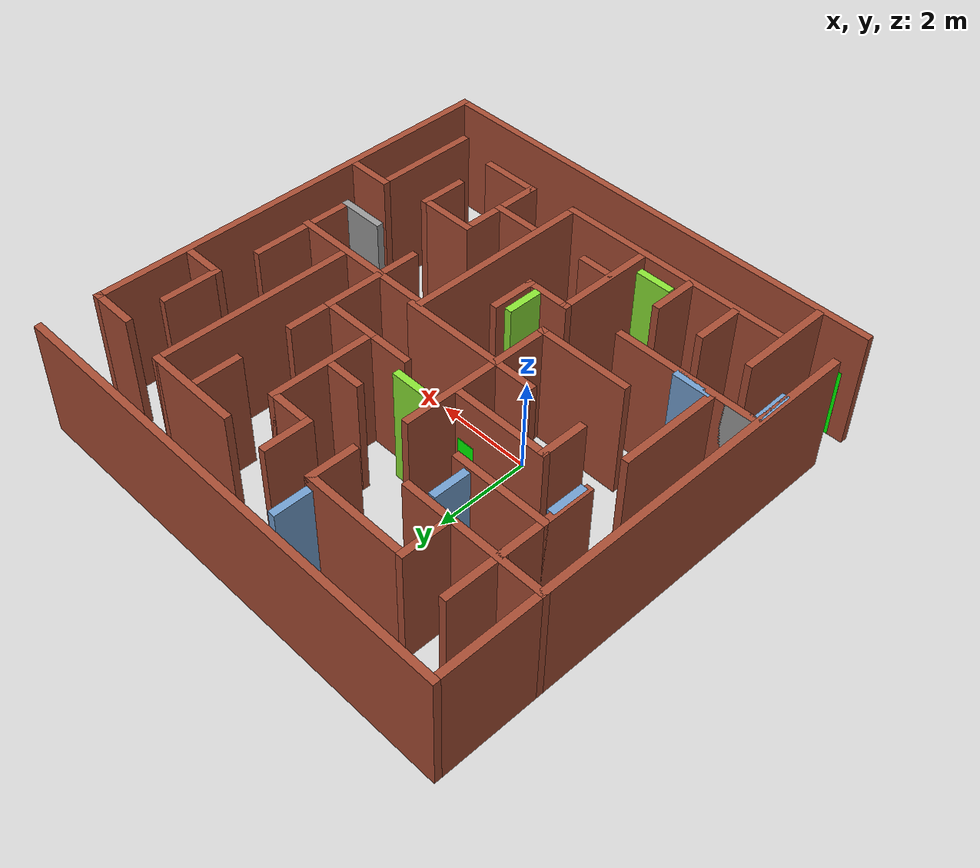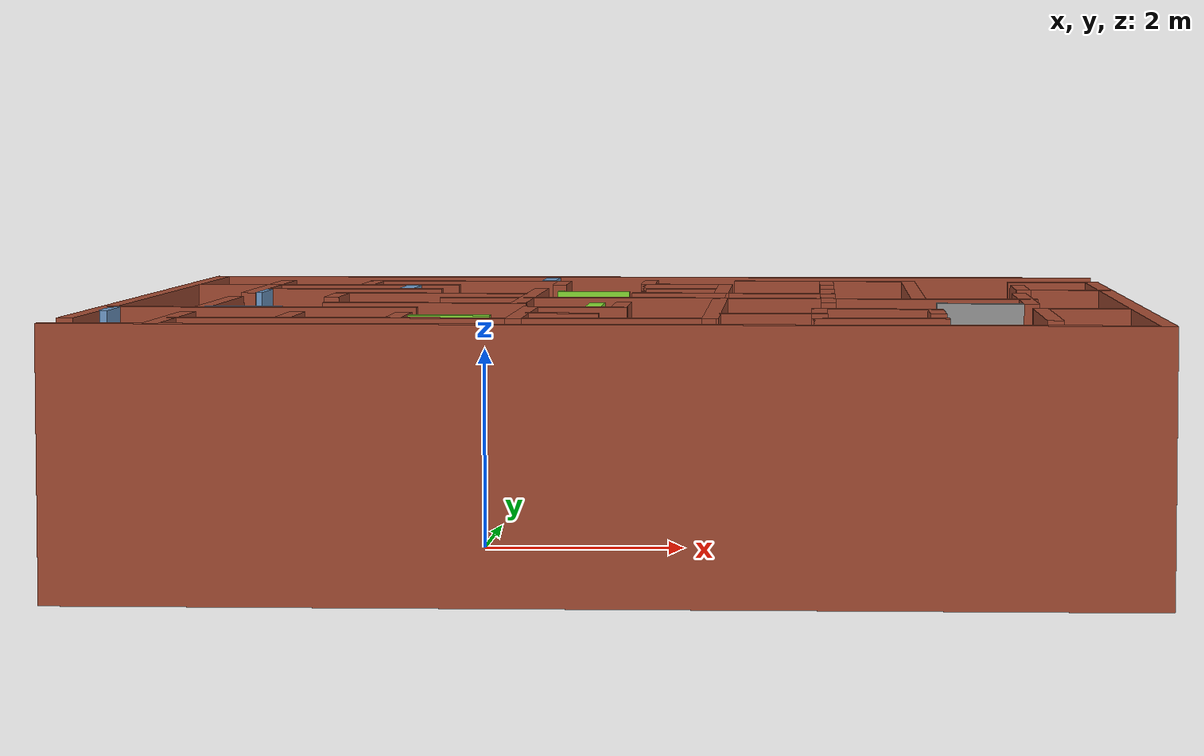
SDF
<?xml version='1.0'?>
<sdf version='1.7'>
  <model name='labyrinth2'>
    <model name='blue'>
      <pose>0.431003 -0.639272 0 0 0 -1.5735</pose>
      <link name='Wall_7'>
        <collision name='Wall_7_Collision'>
          <geometry>
            <box>
              <size>0.75 0.15 2.5</size>
            </box>
          </geometry>
          <pose>0 0 1.25 0 -0 0</pose>
        </collision>
        <visual name='Wall_7_Visual'>
          <pose>0 0 1.25 0 -0 0</pose>
          <geometry>
            <box>
              <size>0.75 0.15 2.5</size>
            </box>
          </geometry>
          <material>
            <script>
              <uri>file://media/materials/scripts/gazebo.material</uri>
              <name>Gazebo/Grey</name>
            </script>
            <ambient>0.447059 0.623529 0.811765 1</ambient>
          </material>
          <meta>
            <layer>0</layer>
          </meta>
        </visual>
        <pose>-5.41026 -0.105215 0 0 -0 0</pose>
      </link>
      <static>1</static>
    </model>
    <model name='blue_0'>
      <pose>3.22005 -1.51487 0 0 -0 0</pose>
      <link name='Wall_7'>
        <collision name='Wall_7_Collision'>
          <geometry>
            <box>
              <size>0.75 0.15 2.5</size>
            </box>
          </geometry>
          <pose>0 0 1.25 0 -0 0</pose>
        </collision>
        <visual name='Wall_7_Visual'>
          <pose>0 0 1.25 0 -0 0</pose>
          <geometry>
            <box>
              <size>0.75 0.15 2.5</size>
            </box>
          </geometry>
          <material>
            <script>
              <uri>file://media/materials/scripts/gazebo.material</uri>
              <name>Gazebo/Grey</name>
            </script>
            <ambient>0.447059 0.623529 0.811765 1</ambient>
          </material>
          <meta>
            <layer>0</layer>
          </meta>
        </visual>
        <pose>-5.41026 -0.105215 0 0 -0 0</pose>
      </link>
      <static>1</static>
    </model>
    <model name='blue_1'>
      <pose>-3.59976 3.27564 0 0 -0 1.58436</pose>
      <link name='Wall_7'>
        <collision name='Wall_7_Collision'>
          <geometry>
            <box>
              <size>0.75 0.15 2.5</size>
            </box>
          </geometry>
          <pose>0 0 1.25 0 -0 0</pose>
        </collision>
        <visual name='Wall_7_Visual'>
          <pose>0 0 1.25 0 -0 0</pose>
          <geometry>
            <box>
              <size>0.75 0.15 2.5</size>
            </box>
          </geometry>
          <material>
            <script>
              <uri>file://media/materials/scripts/gazebo.material</uri>
              <name>Gazebo/Grey</name>
            </script>
            <ambient>0.447059 0.623529 0.811765 1</ambient>
          </material>
          <meta>
            <layer>0</layer>
          </meta>
        </visual>
        <pose>-5.41026 -0.105215 0 0 -0 0</pose>
      </link>
      <static>1</static>
    </model>
    <model name='blue_clone'>
      <pose>-2.42346 -3.70694 0 0 0 -1.5735</pose>
      <link name='Wall_7'>
        <collision name='Wall_7_Collision'>
          <geometry>
            <box>
              <size>0.75 0.15 2.5</size>
            </box>
          </geometry>
          <pose>0 0 1.25 0 -0 0</pose>
        </collision>
        <visual name='Wall_7_Visual'>
          <pose>0 0 1.25 0 -0 0</pose>
          <geometry>
            <box>
              <size>0.75 0.15 2.5</size>
            </box>
          </geometry>
          <material>
            <script>
              <uri>file://media/materials/scripts/gazebo.material</uri>
              <name>Gazebo/Grey</name>
            </script>
            <ambient>0.447059 0.623529 0.811765 1</ambient>
          </material>
          <meta>
            <layer>0</layer>
          </meta>
        </visual>
        <pose>-5.41026 -0.105215 0 0 -0 0</pose>
      </link>
      <static>1</static>
    </model>
    <model name='blue_clone_0'>
      <pose>-0.950572 -2.63679 0 0 0 -1.5735</pose>
      <link name='Wall_7'>
        <collision name='Wall_7_Collision'>
          <geometry>
            <box>
              <size>0.75 0.15 2.5</size>
            </box>
          </geometry>
          <pose>0 0 1.25 0 -0 0</pose>
        </collision>
        <visual name='Wall_7_Visual'>
          <pose>0 0 1.25 0 -0 0</pose>
          <geometry>
            <box>
              <size>0.75 0.15 2.5</size>
            </box>
          </geometry>
          <material>
            <script>
              <uri>file://media/materials/scripts/gazebo.material</uri>
              <name>Gazebo/Grey</name>
            </script>
            <ambient>0.447059 0.623529 0.811765 1</ambient>
          </material>
          <meta>
            <layer>0</layer>
          </meta>
        </visual>
        <pose>-5.41026 -0.105215 0 0 -0 0</pose>
      </link>
      <static>1</static>
    </model>
    <model name='green'>
      <pose>-1.04556 2.91246 0 0 -0 0</pose>
      <link name='Wall_9'>
        <collision name='Wall_9_Collision'>
          <geometry>
            <box>
              <size>0.75 0.15 2.5</size>
            </box>
          </geometry>
          <pose>0 0 1.25 0 -0 0</pose>
        </collision>
        <visual name='Wall_9_Visual'>
          <pose>0 0 1.25 0 -0 0</pose>
          <geometry>
            <box>
              <size>0.75 0.15 2.5</size>
            </box>
          </geometry>
          <material>
            <script>
              <uri>file://media/materials/scripts/gazebo.material</uri>
              <name>Gazebo/Grey</name>
            </script>
            <ambient>0.541176 0.886275 0.203922 1</ambient>
          </material>
          <meta>
            <layer>0</layer>
          </meta>
        </visual>
        <pose>2.0395 -1.1985 0 0 -0 0</pose>
      </link>
      <static>1</static>
    </model>
    <model name='green_0'>
      <pose>2.37475 0.953394 0 0 0 -1.57194</pose>
      <link name='Wall_9'>
        <collision name='Wall_9_Collision'>
          <geometry>
            <box>
              <size>0.75 0.15 2.5</size>
            </box>
          </geometry>
          <pose>0 0 1.25 0 -0 0</pose>
        </collision>
        <visual name='Wall_9_Visual'>
          <pose>0 0 1.25 0 -0 0</pose>
          <geometry>
            <box>
              <size>0.75 0.15 2.5</size>
            </box>
          </geometry>
          <material>
            <script>
              <uri>file://media/materials/scripts/gazebo.material</uri>
              <name>Gazebo/Grey</name>
            </script>
            <ambient>0.541176 0.886275 0.203922 1</ambient>
          </material>
          <meta>
            <layer>0</layer>
          </meta>
        </visual>
        <pose>2.0395 -1.1985 0 0 -0 0</pose>
      </link>
      <static>1</static>
    </model>
    <model name='green_1'>
      <pose>-2.08812 -1.96831 0 0 -0 0</pose>
      <link name='Wall_9'>
        <collision name='Wall_9_Collision'>
          <geometry>
            <box>
              <size>0.75 0.15 2.5</size>
            </box>
          </geometry>
          <pose>0 0 1.25 0 -0 0</pose>
        </collision>
        <visual name='Wall_9_Visual'>
          <pose>0 0 1.25 0 -0 0</pose>
          <geometry>
            <box>
              <size>0.75 0.15 2.5</size>
            </box>
          </geometry>
          <material>
            <script>
              <uri>file://media/materials/scripts/gazebo.material</uri>
              <name>Gazebo/Grey</name>
            </script>
            <ambient>0.541176 0.886275 0.203922 1</ambient>
          </material>
          <meta>
            <layer>0</layer>
          </meta>
        </visual>
        <pose>2.0395 -1.1985 0 0 -0 0</pose>
      </link>
      <static>1</static>
    </model>
    <model name='green_thin'>
      <pose>-0.243979 -1.48985 0 0 -0 0</pose>
      <link name='Wall_5'>
        <collision name='Wall_5_Collision'>
          <geometry>
            <box>
              <size>0.36 0.01 1.5</size>
            </box>
          </geometry>
          <pose>0 0 0.75 0 -0 0</pose>
        </collision>
        <visual name='Wall_5_Visual'>
          <pose>0 0 0.75 0 -0 0</pose>
          <geometry>
            <box>
              <size>0.36 0.01 1.5</size>
            </box>
          </geometry>
          <material>
            <script>
              <uri>file://media/materials/scripts/gazebo.material</uri>
              <name>Gazebo/Grey</name>
            </script>
            <ambient>0 1 0 1</ambient>
          </material>
          <meta>
            <layer>0</layer>
          </meta>
        </visual>
        <pose>-2.8125 -3.0925 0 0 -0 0</pose>
      </link>
      <static>1</static>
    </model>
    <model name='green_thin_0'>
      <pose>2.88238 4.45094 0 0 -0 0</pose>
      <link name='Wall_5'>
        <collision name='Wall_5_Collision'>
          <geometry>
            <box>
              <size>0.36 0.01 1.5</size>
            </box>
          </geometry>
          <pose>0 0 0.75 0 -0 0</pose>
        </collision>
        <visual name='Wall_5_Visual'>
          <pose>0 0 0.75 0 -0 0</pose>
          <geometry>
            <box>
              <size>0.36 0.01 1.5</size>
            </box>
          </geometry>
          <material>
            <script>
              <uri>file://media/materials/scripts/gazebo.material</uri>
              <name>Gazebo/Grey</name>
            </script>
            <ambient>0 1 0 1</ambient>
          </material>
          <meta>
            <layer>0</layer>
          </meta>
        </visual>
        <pose>-2.8125 -3.0925 0 0 -0 0</pose>
      </link>
      <static>1</static>
    </model>
    <model name='maikyuu_te'>
      <pose>1.44325 0.363613 0 0 -0 0</pose>
      <link name='Wall_100'>
        <collision name='Wall_100_Collision'>
          <geometry>
            <box>
              <size>1 0.15 2.5</size>
            </box>
          </geometry>
          <pose>0 0 1.25 0 -0 0</pose>
        </collision>
        <visual name='Wall_100_Visual'>
          <pose>0 0 1.25 0 -0 0</pose>
          <geometry>
            <box>
              <size>1 0.15 2.5</size>
            </box>
          </geometry>
          <material>
            <script>
              <uri>file://media/materials/scripts/gazebo.material</uri>
              <name>Gazebo/Bricks</name>
            </script>
            <ambient>1 1 1 1</ambient>
          </material>
          <meta>
            <layer>0</layer>
          </meta>
        </visual>
        <pose>-0.442288 -1.88585 0 0 -0 3.14159</pose>
      </link>
      <link name='Wall_101'>
        <collision name='Wall_101_Collision'>
          <geometry>
            <box>
              <size>2.25 0.15 2.5</size>
            </box>
          </geometry>
          <pose>0 0 1.25 0 -0 0</pose>
        </collision>
        <visual name='Wall_101_Visual'>
          <pose>0 0 1.25 0 -0 0</pose>
          <geometry>
            <box>
              <size>2.25 0.15 2.5</size>
            </box>
          </geometry>
          <material>
            <script>
              <uri>file://media/materials/scripts/gazebo.material</uri>
              <name>Gazebo/Bricks</name>
            </script>
            <ambient>1 1 1 1</ambient>
          </material>
          <meta>
            <layer>0</layer>
          </meta>
        </visual>
        <pose>-0.867288 -2.93585 0 0 -0 -1.5708</pose>
      </link>
      <link name='Wall_103'>
        <collision name='Wall_103_Collision'>
          <geometry>
            <box>
              <size>0.75 0.15 2.5</size>
            </box>
          </geometry>
          <pose>0 0 1.25 0 -0 0</pose>
        </collision>
        <visual name='Wall_103_Visual'>
          <pose>0 0 1.25 0 -0 0</pose>
          <geometry>
            <box>
              <size>0.75 0.15 2.5</size>
            </box>
          </geometry>
          <material>
            <script>
              <uri>file://media/materials/scripts/gazebo.material</uri>
              <name>Gazebo/Bricks</name>
            </script>
            <ambient>1 1 1 1</ambient>
          </material>
          <meta>
            <layer>0</layer>
          </meta>
        </visual>
        <pose>-0.521831 -3.06732 0 0 -0 0</pose>
      </link>
      <link name='Wall_105'>
        <collision name='Wall_105_Collision'>
          <geometry>
            <box>
              <size>1 0.15 2.5</size>
            </box>
          </geometry>
          <pose>0 0 1.25 0 -0 0</pose>
        </collision>
        <visual name='Wall_105_Visual'>
          <pose>0 0 1.25 0 -0 0</pose>
          <geometry>
            <box>
              <size>1 0.15 2.5</size>
            </box>
          </geometry>
          <material>
            <script>
              <uri>file://media/materials/scripts/gazebo.material</uri>
              <name>Gazebo/Bricks</name>
            </script>
            <ambient>1 1 1 1</ambient>
          </material>
          <meta>
            <layer>0</layer>
          </meta>
        </visual>
        <pose>1.47373 -3.02709 0 0 -0 0</pose>
      </link>
      <link name='Wall_106'>
        <collision name='Wall_106_Collision'>
          <geometry>
            <box>
              <size>1 0.15 2.5</size>
            </box>
          </geometry>
          <pose>0 0 1.25 0 -0 0</pose>
        </collision>
        <visual name='Wall_106_Visual'>
          <pose>0 0 1.25 0 -0 0</pose>
          <geometry>
            <box>
              <size>1 0.15 2.5</size>
            </box>
          </geometry>
          <material>
            <script>
              <uri>file://media/materials/scripts/gazebo.material</uri>
              <name>Gazebo/Bricks</name>
            </script>
            <ambient>1 1 1 1</ambient>
          </material>
          <meta>
            <layer>0</layer>
          </meta>
        </visual>
        <pose>1.89873 -2.60209 0 0 -0 1.5708</pose>
      </link>
      <link name='Wall_107'>
        <collision name='Wall_107_Collision'>
          <geometry>
            <box>
              <size>1.25 0.15 2.5</size>
            </box>
          </geometry>
          <pose>0 0 1.25 0 -0 0</pose>
        </collision>
        <visual name='Wall_107_Visual'>
          <pose>0 0 1.25 0 -0 0</pose>
          <geometry>
            <box>
              <size>1.25 0.15 2.5</size>
            </box>
          </geometry>
          <material>
            <script>
              <uri>file://media/materials/scripts/gazebo.material</uri>
              <name>Gazebo/Bricks</name>
            </script>
            <ambient>1 1 1 1</ambient>
          </material>
          <meta>
            <layer>0</layer>
          </meta>
        </visual>
        <pose>2.44873 -2.17709 0 0 -0 0</pose>
      </link>
      <link name='Wall_108'>
        <collision name='Wall_108_Collision'>
          <geometry>
            <box>
              <size>1 0.15 2.5</size>
            </box>
          </geometry>
          <pose>0 0 1.25 0 -0 0</pose>
        </collision>
        <visual name='Wall_108_Visual'>
          <pose>0 0 1.25 0 -0 0</pose>
          <geometry>
            <box>
              <size>1 0.15 2.5</size>
            </box>
          </geometry>
          <material>
            <script>
              <uri>file://media/materials/scripts/gazebo.material</uri>
              <name>Gazebo/Bricks</name>
            </script>
            <ambient>1 1 1 1</ambient>
          </material>
          <meta>
            <layer>0</layer>
          </meta>
        </visual>
        <pose>2.99873 -2.60209 0 0 -0 -1.5708</pose>
      </link>
      <link name='Wall_110'>
        <collision name='Wall_110_Collision'>
          <geometry>
            <box>
              <size>2.25 0.15 2.5</size>
            </box>
          </geometry>
          <pose>0 0 1.25 0 -0 0</pose>
        </collision>
        <visual name='Wall_110_Visual'>
          <pose>0 0 1.25 0 -0 0</pose>
          <geometry>
            <box>
              <size>2.25 0.15 2.5</size>
            </box>
          </geometry>
          <material>
            <script>
              <uri>file://media/materials/scripts/gazebo.material</uri>
              <name>Gazebo/Bricks</name>
            </script>
            <ambient>1 1 1 1</ambient>
          </material>
          <meta>
            <layer>0</layer>
          </meta>
        </visual>
        <pose>-4.01989 -0.999716 0 0 -0 -1.5708</pose>
      </link>
      <link name='Wall_111'>
        <collision name='Wall_111_Collision'>
          <geometry>
            <box>
              <size>1 0.15 2.5</size>
            </box>
          </geometry>
          <pose>0 0 1.25 0 -0 0</pose>
        </collision>
        <visual name='Wall_111_Visual'>
          <pose>0 0 1.25 0 -0 0</pose>
          <geometry>
            <box>
              <size>1 0.15 2.5</size>
            </box>
          </geometry>
          <material>
            <script>
              <uri>file://media/materials/scripts/gazebo.material</uri>
              <name>Gazebo/Grey</name>
            </script>
            <ambient>1 1 1 1</ambient>
          </material>
          <meta>
            <layer>0</layer>
          </meta>
        </visual>
        <pose>-4.44489 -2.04972 0 0 -0 3.14159</pose>
      </link>
      <link name='Wall_112'>
        <collision name='Wall_112_Collision'>
          <geometry>
            <box>
              <size>3 0.15 2.5</size>
            </box>
          </geometry>
          <pose>0 0 1.25 0 -0 0</pose>
        </collision>
        <visual name='Wall_112_Visual'>
          <pose>0 0 1.25 0 -0 0</pose>
          <geometry>
            <box>
              <size>3 0.15 2.5</size>
            </box>
          </geometry>
          <material>
            <script>
              <uri>file://media/materials/scripts/gazebo.material</uri>
              <name>Gazebo/Bricks</name>
            </script>
            <ambient>1 1 1 1</ambient>
          </material>
          <meta>
            <layer>0</layer>
          </meta>
        </visual>
        <pose>-3.44489 -2.04972 0 0 -0 0</pose>
      </link>
      <link name='Wall_114'>
        <collision name='Wall_114_Collision'>
          <geometry>
            <box>
              <size>1 0.15 2.5</size>
            </box>
          </geometry>
          <pose>0 0 1.25 0 -0 0</pose>
        </collision>
        <visual name='Wall_114_Visual'>
          <pose>0 0 1.25 0 -0 0</pose>
          <geometry>
            <box>
              <size>1 0.15 2.5</size>
            </box>
          </geometry>
          <material>
            <script>
              <uri>file://media/materials/scripts/gazebo.material</uri>
              <name>Gazebo/Bricks</name>
            </script>
            <ambient>1 1 1 1</ambient>
          </material>
          <meta>
            <layer>0</layer>
          </meta>
        </visual>
        <pose>-3.01421 3.43198 0 0 -0 1.5708</pose>
      </link>
      <link name='Wall_115'>
        <collision name='Wall_115_Collision'>
          <geometry>
            <box>
              <size>2.25 0.15 2.5</size>
            </box>
          </geometry>
          <pose>0 0 1.25 0 -0 0</pose>
        </collision>
        <visual name='Wall_115_Visual'>
          <pose>0 0 1.25 0 -0 0</pose>
          <geometry>
            <box>
              <size>2.25 0.15 2.5</size>
            </box>
          </geometry>
          <material>
            <script>
              <uri>file://media/materials/scripts/gazebo.material</uri>
              <name>Gazebo/Bricks</name>
            </script>
            <ambient>1 1 1 1</ambient>
          </material>
          <meta>
            <layer>0</layer>
          </meta>
        </visual>
        <pose>-1.96421 3.85698 0 0 -0 0</pose>
      </link>
      <link name='Wall_116'>
        <collision name='Wall_116_Collision'>
          <geometry>
            <box>
              <size>1 0.15 2.5</size>
            </box>
          </geometry>
          <pose>0 0 1.25 0 -0 0</pose>
        </collision>
        <visual name='Wall_116_Visual'>
          <pose>0 0 1.25 0 -0 0</pose>
          <geometry>
            <box>
              <size>1 0.15 2.5</size>
            </box>
          </geometry>
          <material>
            <script>
              <uri>file://media/materials/scripts/gazebo.material</uri>
              <name>Gazebo/Bricks</name>
            </script>
            <ambient>1 1 1 1</ambient>
          </material>
          <meta>
            <layer>0</layer>
          </meta>
        </visual>
        <pose>-0.91421 3.43198 0 0 -0 -1.5708</pose>
      </link>
      <link name='Wall_118'>
        <collision name='Wall_118_Collision'>
          <geometry>
            <box>
              <size>1 0.15 2.5</size>
            </box>
          </geometry>
          <pose>0 0 1.25 0 -0 0</pose>
        </collision>
        <visual name='Wall_118_Visual'>
          <pose>0 0 1.25 0 -0 0</pose>
          <geometry>
            <box>
              <size>1 0.15 2.5</size>
            </box>
          </geometry>
          <material>
            <script>
              <uri>file://media/materials/scripts/gazebo.material</uri>
              <name>Gazebo/Bricks</name>
            </script>
            <ambient>1 1 1 1</ambient>
          </material>
          <meta>
            <layer>0</layer>
          </meta>
        </visual>
        <pose>0.043052 3.56754 0 0 -0 -1.5708</pose>
      </link>
      <link name='Wall_119'>
        <collision name='Wall_119_Collision'>
          <geometry>
            <box>
              <size>1 0.15 2.5</size>
            </box>
          </geometry>
          <pose>0 0 1.25 0 -0 0</pose>
        </collision>
        <visual name='Wall_119_Visual'>
          <pose>0 0 1.25 0 -0 0</pose>
          <geometry>
            <box>
              <size>1 0.15 2.5</size>
            </box>
          </geometry>
          <material>
            <script>
              <uri>file://media/materials/scripts/gazebo.material</uri>
              <name>Gazebo/Bricks</name>
            </script>
            <ambient>1 1 1 1</ambient>
          </material>
          <meta>
            <layer>0</layer>
          </meta>
        </visual>
        <pose>0.468052 3.14254 0 0 -0 0</pose>
      </link>
      <link name='Wall_120'>
        <collision name='Wall_120_Collision'>
          <geometry>
            <box>
              <size>2.25 0.15 2.5</size>
            </box>
          </geometry>
          <pose>0 0 1.25 0 -0 0</pose>
        </collision>
        <visual name='Wall_120_Visual'>
          <pose>0 0 1.25 0 -0 0</pose>
          <geometry>
            <box>
              <size>2.25 0.15 2.5</size>
            </box>
          </geometry>
          <material>
            <script>
              <uri>file://media/materials/scripts/gazebo.material</uri>
              <name>Gazebo/Bricks</name>
            </script>
            <ambient>1 1 1 1</ambient>
          </material>
          <meta>
            <layer>0</layer>
          </meta>
        </visual>
        <pose>0.893052 2.09254 0 0 -0 -1.5708</pose>
      </link>
      <link name='Wall_121'>
        <collision name='Wall_121_Collision'>
          <geometry>
            <box>
              <size>1 0.15 2.5</size>
            </box>
          </geometry>
          <pose>0 0 1.25 0 -0 0</pose>
        </collision>
        <visual name='Wall_121_Visual'>
          <pose>0 0 1.25 0 -0 0</pose>
          <geometry>
            <box>
              <size>1 0.15 2.5</size>
            </box>
          </geometry>
          <material>
            <script>
              <uri>file://media/materials/scripts/gazebo.material</uri>
              <name>Gazebo/Bricks</name>
            </script>
            <ambient>1 1 1 1</ambient>
          </material>
          <meta>
            <layer>0</layer>
          </meta>
        </visual>
        <pose>0.468052 1.04254 0 0 -0 3.14159</pose>
      </link>
      <link name='Wall_123'>
        <collision name='Wall_123_Collision'>
          <geometry>
            <box>
              <size>1.25 0.15 2.5</size>
            </box>
          </geometry>
          <pose>0 0 1.25 0 -0 0</pose>
        </collision>
        <visual name='Wall_123_Visual'>
          <pose>0 0 1.25 0 -0 0</pose>
          <geometry>
            <box>
              <size>1.25 0.15 2.5</size>
            </box>
          </geometry>
          <material>
            <script>
              <uri>file://media/materials/scripts/gazebo.material</uri>
              <name>Gazebo/Bricks</name>
            </script>
            <ambient>1 1 1 1</ambient>
          </material>
          <meta>
            <layer>0</layer>
          </meta>
        </visual>
        <pose>1.44305 1.04254 0 0 -0 0</pose>
      </link>
      <link name='Wall_124'>
        <collision name='Wall_124_Collision'>
          <geometry>
            <box>
              <size>1.25 0.15 2.5</size>
            </box>
          </geometry>
          <pose>0 0 1.25 0 -0 0</pose>
        </collision>
        <visual name='Wall_124_Visual'>
          <pose>0 0 1.25 0 -0 0</pose>
          <geometry>
            <box>
              <size>1.25 0.15 2.5</size>
            </box>
          </geometry>
          <material>
            <script>
              <uri>file://media/materials/scripts/gazebo.material</uri>
              <name>Gazebo/Bricks</name>
            </script>
            <ambient>1 1 1 1</ambient>
          </material>
          <meta>
            <layer>0</layer>
          </meta>
        </visual>
        <pose>1.99305 0.492544 0 0 -0 -1.5708</pose>
      </link>
      <link name='Wall_126'>
        <collision name='Wall_126_Collision'>
          <geometry>
            <box>
              <size>1 0.15 2.5</size>
            </box>
          </geometry>
          <pose>0 0 1.25 0 -0 0</pose>
        </collision>
        <visual name='Wall_126_Visual'>
          <pose>0 0 1.25 0 -0 0</pose>
          <geometry>
            <box>
              <size>1 0.15 2.5</size>
            </box>
          </geometry>
          <material>
            <script>
              <uri>file://media/materials/scripts/gazebo.material</uri>
              <name>Gazebo/Bricks</name>
            </script>
            <ambient>1 1 1 1</ambient>
          </material>
          <meta>
            <layer>0</layer>
          </meta>
        </visual>
        <pose>1.99407 3.48709 0 0 -0 -1.5708</pose>
      </link>
      <link name='Wall_128'>
        <collision name='Wall_128_Collision'>
          <geometry>
            <box>
              <size>2 0.15 2.5</size>
            </box>
          </geometry>
          <pose>0 0 1.25 0 -0 0</pose>
        </collision>
        <visual name='Wall_128_Visual'>
          <pose>0 0 1.25 0 -0 0</pose>
          <geometry>
            <box>
              <size>2 0.15 2.5</size>
            </box>
          </geometry>
          <material>
            <script>
              <uri>file://media/materials/scripts/gazebo.material</uri>
              <name>Gazebo/Bricks</name>
            </script>
            <ambient>1 1 1 1</ambient>
          </material>
          <meta>
            <layer>0</layer>
          </meta>
        </visual>
        <pose>-2.10888 0.915168 0 0 -0 3.14159</pose>
      </link>
      <link name='Wall_129'>
        <collision name='Wall_129_Collision'>
          <geometry>
            <box>
              <size>1 0.15 2.5</size>
            </box>
          </geometry>
          <pose>0 0 1.25 0 -0 0</pose>
        </collision>
        <visual name='Wall_129_Visual'>
          <pose>0 0 1.25 0 -0 0</pose>
          <geometry>
            <box>
              <size>1 0.15 2.5</size>
            </box>
          </geometry>
          <material>
            <script>
              <uri>file://media/materials/scripts/gazebo.material</uri>
              <name>Gazebo/Bricks</name>
            </script>
            <ambient>1 1 1 1</ambient>
          </material>
          <meta>
            <layer>0</layer>
          </meta>
        </visual>
        <pose>-3.03388 0.490168 0 0 -0 -1.5708</pose>
      </link>
      <link name='Wall_131'>
        <collision name='Wall_131_Collision'>
          <geometry>
            <box>
              <size>2 0.15 2.5</size>
            </box>
          </geometry>
          <pose>0 0 1.25 0 -0 0</pose>
        </collision>
        <visual name='Wall_131_Visual'>
          <pose>0 0 1.25 0 -0 0</pose>
          <geometry>
            <box>
              <size>2 0.15 2.5</size>
            </box>
          </geometry>
          <material>
            <script>
              <uri>file://media/materials/scripts/gazebo.material</uri>
              <name>Gazebo/Bricks</name>
            </script>
            <ambient>1 1 1 1</ambient>
          </material>
          <meta>
            <layer>0</layer>
          </meta>
        </visual>
        <pose>-3.09489 1.92085 0 0 -0 0</pose>
      </link>
      <link name='Wall_133'>
        <collision name='Wall_133_Collision'>
          <geometry>
            <box>
              <size>1.25 0.15 2.5</size>
            </box>
          </geometry>
          <pose>0 0 1.25 0 -0 0</pose>
        </collision>
        <visual name='Wall_133_Visual'>
          <pose>0 0 1.25 0 -0 0</pose>
          <geometry>
            <box>
              <size>1.25 0.15 2.5</size>
            </box>
          </geometry>
          <material>
            <script>
              <uri>file://media/materials/scripts/gazebo.material</uri>
              <name>Gazebo/Bricks</name>
            </script>
            <ambient>1 1 1 1</ambient>
          </material>
          <meta>
            <layer>0</layer>
          </meta>
        </visual>
        <pose>-4.01989 3.37596 0 0 -0 1.5708</pose>
      </link>
      <link name='Wall_135'>
        <collision name='Wall_135_Collision'>
          <geometry>
            <box>
              <size>1 0.15 2.5</size>
            </box>
          </geometry>
          <pose>0 0 1.25 0 -0 0</pose>
        </collision>
        <visual name='Wall_135_Visual'>
          <pose>0 0 1.25 0 -0 0</pose>
          <geometry>
            <box>
              <size>1 0.15 2.5</size>
            </box>
          </geometry>
          <material>
            <script>
              <uri>file://media/materials/scripts/gazebo.material</uri>
              <name>Gazebo/Bricks</name>
            </script>
            <ambient>1 1 1 1</ambient>
          </material>
          <meta>
            <layer>0</layer>
          </meta>
        </visual>
        <pose>1.89873 -3.45209 0 0 -0 -1.5708</pose>
      </link>
      <link name='Wall_136'>
        <collision name='Wall_136_Collision'>
          <geometry>
            <box>
              <size>1.25 0.15 2.5</size>
            </box>
          </geometry>
          <pose>0 0 1.25 0 -0 0</pose>
        </collision>
        <visual name='Wall_136_Visual'>
          <pose>0 0 1.25 0 -0 0</pose>
          <geometry>
            <box>
              <size>1.25 0.15 2.5</size>
            </box>
          </geometry>
          <material>
            <script>
              <uri>file://media/materials/scripts/gazebo.material</uri>
              <name>Gazebo/Bricks</name>
            </script>
            <ambient>1 1 1 1</ambient>
          </material>
          <meta>
            <layer>0</layer>
          </meta>
        </visual>
        <pose>2.44873 -3.87709 0 0 -0 0</pose>
      </link>
      <link name='Wall_138'>
        <collision name='Wall_138_Collision'>
          <geometry>
            <box>
              <size>0.75 0.15 2.5</size>
            </box>
          </geometry>
          <pose>0 0 1.25 0 -0 0</pose>
        </collision>
        <visual name='Wall_138_Visual'>
          <pose>0 0 1.25 0 -0 0</pose>
          <geometry>
            <box>
              <size>0.75 0.15 2.5</size>
            </box>
          </geometry>
          <material>
            <script>
              <uri>file://media/materials/scripts/gazebo.material</uri>
              <name>Gazebo/Bricks</name>
            </script>
            <ambient>1 1 1 1</ambient>
          </material>
          <meta>
            <layer>0</layer>
          </meta>
        </visual>
        <pose>0.447027 2.0013 0 0 -0 3.14159</pose>
      </link>
      <link name='Wall_140'>
        <collision name='Wall_140_Collision'>
          <geometry>
            <box>
              <size>1 0.15 2.5</size>
            </box>
          </geometry>
          <pose>0 0 1.25 0 -0 0</pose>
        </collision>
        <visual name='Wall_140_Visual'>
          <pose>0 0 1.25 0 -0 0</pose>
          <geometry>
            <box>
              <size>1 0.15 2.5</size>
            </box>
          </geometry>
          <material>
            <script>
              <uri>file://media/materials/scripts/gazebo.material</uri>
              <name>Gazebo/Bricks</name>
            </script>
            <ambient>1 1 1 1</ambient>
          </material>
          <meta>
            <layer>0</layer>
          </meta>
        </visual>
        <pose>1.99305 1.46754 0 0 -0 1.5708</pose>
      </link>
      <link name='Wall_142'>
        <collision name='Wall_142_Collision'>
          <geometry>
            <box>
              <size>1 0.15 2.5</size>
            </box>
          </geometry>
          <pose>0 0 1.25 0 -0 0</pose>
        </collision>
        <visual name='Wall_142_Visual'>
          <pose>0 0 1.25 0 -0 0</pose>
          <geometry>
            <box>
              <size>1 0.15 2.5</size>
            </box>
          </geometry>
          <material>
            <script>
              <uri>file://media/materials/scripts/gazebo.material</uri>
              <name>Gazebo/Bricks</name>
            </script>
            <ambient>1 1 1 1</ambient>
          </material>
          <meta>
            <layer>0</layer>
          </meta>
        </visual>
        <pose>1.99305 -0.482456 0 0 -0 -1.5708</pose>
      </link>
      <link name='Wall_144'>
        <collision name='Wall_144_Collision'>
          <geometry>
            <box>
              <size>1 0.15 2.5</size>
            </box>
          </geometry>
          <pose>0 0 1.25 0 -0 0</pose>
        </collision>
        <visual name='Wall_144_Visual'>
          <pose>0 0 1.25 0 -0 0</pose>
          <geometry>
            <box>
              <size>1 0.15 2.5</size>
            </box>
          </geometry>
          <material>
            <script>
              <uri>file://media/materials/scripts/gazebo.material</uri>
              <name>Gazebo/Bricks</name>
            </script>
            <ambient>1 1 1 1</ambient>
          </material>
          <meta>
            <layer>0</layer>
          </meta>
        </visual>
        <pose>-2.97398 -3.44686 0 0 -0 1.5708</pose>
      </link>
      <link name='Wall_146'>
        <collision name='Wall_146_Collision'>
          <geometry>
            <box>
              <size>1 0.15 2.5</size>
            </box>
          </geometry>
          <pose>0 0 1.25 0 -0 0</pose>
        </collision>
        <visual name='Wall_146_Visual'>
          <pose>0 0 1.25 0 -0 0</pose>
          <geometry>
            <box>
              <size>1 0.15 2.5</size>
            </box>
          </geometry>
          <material>
            <script>
              <uri>file://media/materials/scripts/gazebo.material</uri>
              <name>Gazebo/Bricks</name>
            </script>
            <ambient>1 1 1 1</ambient>
          </material>
          <meta>
            <layer>0</layer>
          </meta>
        </visual>
        <pose>-1.9683 -3.48709 0 0 -0 1.5708</pose>
      </link>
      <link name='Wall_64'>
        <collision name='Wall_64_Collision'>
          <geometry>
            <box>
              <size>10 0.15 2.5</size>
            </box>
          </geometry>
          <pose>0 0 1.25 0 -0 0</pose>
        </collision>
        <visual name='Wall_64_Visual'>
          <pose>0 0 1.25 0 -0 0</pose>
          <geometry>
            <box>
              <size>10 0.15 2.5</size>
            </box>
          </geometry>
          <material>
            <script>
              <uri>file://media/materials/scripts/gazebo.material</uri>
              <name>Gazebo/Bricks</name>
            </script>
            <ambient>1 1 1 1</ambient>
          </material>
          <meta>
            <layer>0</layer>
          </meta>
        </visual>
        <pose>0 5.01834 0 0 -0 0</pose>
      </link>
      <link name='Wall_66'>
        <collision name='Wall_66_Collision'>
          <geometry>
            <box>
              <size>9.25 0.15 2.5</size>
            </box>
          </geometry>
          <pose>0 0 1.25 0 -0 0</pose>
        </collision>
        <visual name='Wall_66_Visual'>
          <pose>0 0 1.25 0 -0 0</pose>
          <geometry>
            <box>
              <size>9.25 0.15 2.5</size>
            </box>
          </geometry>
          <material>
            <script>
              <uri>file://media/materials/scripts/gazebo.material</uri>
              <name>Gazebo/Bricks</name>
            </script>
            <ambient>1 1 1 1</ambient>
          </material>
          <meta>
            <layer>0</layer>
          </meta>
        </visual>
        <pose>-4.925 0.468336 0 0 -0 -1.5708</pose>
      </link>
      <link name='Wall_68'>
        <collision name='Wall_68_Collision'>
          <geometry>
            <box>
              <size>10 0.15 2.5</size>
            </box>
          </geometry>
          <pose>0 0 1.25 0 -0 0</pose>
        </collision>
        <visual name='Wall_68_Visual'>
          <pose>0 0 1.25 0 -0 0</pose>
          <geometry>
            <box>
              <size>10 0.15 2.5</size>
            </box>
          </geometry>
          <material>
            <script>
              <uri>file://media/materials/scripts/gazebo.material</uri>
              <name>Gazebo/Bricks</name>
            </script>
            <ambient>1 1 1 1</ambient>
          </material>
          <meta>
            <layer>0</layer>
          </meta>
        </visual>
        <pose>0 -5.01834 0 0 -0 0</pose>
      </link>
      <link name='Wall_69'>
        <collision name='Wall_69_Collision'>
          <geometry>
            <box>
              <size>9 0.15 2.5</size>
            </box>
          </geometry>
          <pose>0 0 1.25 0 -0 0</pose>
        </collision>
        <visual name='Wall_69_Visual'>
          <pose>0 0 1.25 0 -0 0</pose>
          <geometry>
            <box>
              <size>9 0.15 2.5</size>
            </box>
          </geometry>
          <material>
            <script>
              <uri>file://media/materials/scripts/gazebo.material</uri>
              <name>Gazebo/Bricks</name>
            </script>
            <ambient>1 1 1 1</ambient>
          </material>
          <meta>
            <layer>0</layer>
          </meta>
        </visual>
        <pose>4.925 -0.593336 0 0 -0 1.5708</pose>
      </link>
      <link name='Wall_70'>
        <collision name='Wall_70_Collision'>
          <geometry>
            <box>
              <size>1 0.15 2.5</size>
            </box>
          </geometry>
          <pose>0 0 1.25 0 -0 0</pose>
        </collision>
        <visual name='Wall_70_Visual'>
          <pose>0 0 1.25 0 -0 0</pose>
          <geometry>
            <box>
              <size>1 0.15 2.5</size>
            </box>
          </geometry>
          <material>
            <script>
              <uri>file://media/materials/scripts/gazebo.material</uri>
              <name>Gazebo/Bricks</name>
            </script>
            <ambient>1 1 1 1</ambient>
          </material>
          <meta>
            <layer>0</layer>
          </meta>
        </visual>
        <pose>4.5 3.83166 0 0 -0 3.14159</pose>
      </link>
      <link name='Wall_72'>
        <collision name='Wall_72_Collision'>
          <geometry>
            <box>
              <size>1 0.15 2.5</size>
            </box>
          </geometry>
          <pose>0 0 1.25 0 -0 0</pose>
        </collision>
        <visual name='Wall_72_Visual'>
          <pose>0 0 1.25 0 -0 0</pose>
          <geometry>
            <box>
              <size>1 0.15 2.5</size>
            </box>
          </geometry>
          <material>
            <script>
              <uri>file://media/materials/scripts/gazebo.material</uri>
              <name>Gazebo/Bricks</name>
            </script>
            <ambient>1 1 1 1</ambient>
          </material>
          <meta>
            <layer>0</layer>
          </meta>
        </visual>
        <pose>4.48554 1.94096 0 0 -0 3.14159</pose>
      </link>
      <link name='Wall_73'>
        <collision name='Wall_73_Collision'>
          <geometry>
            <box>
              <size>1.25 0.15 2.5</size>
            </box>
          </geometry>
          <pose>0 0 1.25 0 -0 0</pose>
        </collision>
        <visual name='Wall_73_Visual'>
          <pose>0 0 1.25 0 -0 0</pose>
          <geometry>
            <box>
              <size>1.25 0.15 2.5</size>
            </box>
          </geometry>
          <material>
            <script>
              <uri>file://media/materials/scripts/gazebo.material</uri>
              <name>Gazebo/Bricks</name>
            </script>
            <ambient>1 1 1 1</ambient>
          </material>
          <meta>
            <layer>0</layer>
          </meta>
        </visual>
        <pose>4.06054 2.49096 0 0 -0 1.5708</pose>
      </link>
      <link name='Wall_75'>
        <collision name='Wall_75_Collision'>
          <geometry>
            <box>
              <size>1 0.15 2.5</size>
            </box>
          </geometry>
          <pose>0 0 1.25 0 -0 0</pose>
        </collision>
        <visual name='Wall_75_Visual'>
          <pose>0 0 1.25 0 -0 0</pose>
          <geometry>
            <box>
              <size>1 0.15 2.5</size>
            </box>
          </geometry>
          <material>
            <script>
              <uri>file://media/materials/scripts/gazebo.material</uri>
              <name>Gazebo/Bricks</name>
            </script>
            <ambient>1 1 1 1</ambient>
          </material>
          <meta>
            <layer>0</layer>
          </meta>
        </visual>
        <pose>4.4252 -2.0013 0 0 -0 3.14159</pose>
      </link>
      <link name='Wall_76'>
        <collision name='Wall_76_Collision'>
          <geometry>
            <box>
              <size>2.25 0.15 2.5</size>
            </box>
          </geometry>
          <pose>0 0 1.25 0 -0 0</pose>
        </collision>
        <visual name='Wall_76_Visual'>
          <pose>0 0 1.25 0 -0 0</pose>
          <geometry>
            <box>
              <size>2.25 0.15 2.5</size>
            </box>
          </geometry>
          <material>
            <script>
              <uri>file://media/materials/scripts/gazebo.material</uri>
              <name>Gazebo/Bricks</name>
            </script>
            <ambient>1 1 1 1</ambient>
          </material>
          <meta>
            <layer>0</layer>
          </meta>
        </visual>
        <pose>4.0002 -3.0513 0 0 -0 -1.5708</pose>
      </link>
      <link name='Wall_78'>
        <collision name='Wall_78_Collision'>
          <geometry>
            <box>
              <size>2 0.15 2.5</size>
            </box>
          </geometry>
          <pose>0 0 1.25 0 -0 0</pose>
        </collision>
        <visual name='Wall_78_Visual'>
          <pose>0 0 1.25 0 -0 0</pose>
          <geometry>
            <box>
              <size>2 0.15 2.5</size>
            </box>
          </geometry>
          <material>
            <script>
              <uri>file://media/materials/scripts/gazebo.material</uri>
              <name>Gazebo/Bricks</name>
            </script>
            <ambient>1 1 1 1</ambient>
          </material>
          <meta>
            <layer>0</layer>
          </meta>
        </visual>
        <pose>-3.99978 -3.97221 0 0 -0 -1.5708</pose>
      </link>
      <link name='Wall_80'>
        <collision name='Wall_80_Collision'>
          <geometry>
            <box>
              <size>5 0.15 2.5</size>
            </box>
          </geometry>
          <pose>0 0 1.25 0 -0 0</pose>
        </collision>
        <visual name='Wall_80_Visual'>
          <pose>0 0 1.25 0 -0 0</pose>
          <geometry>
            <box>
              <size>5 0.15 2.5</size>
            </box>
          </geometry>
          <material>
            <script>
              <uri>file://media/materials/scripts/gazebo.material</uri>
              <name>Gazebo/Bricks</name>
            </script>
            <ambient>1 1 1 1</ambient>
          </material>
          <meta>
            <layer>0</layer>
          </meta>
        </visual>
        <pose>-1.51443 -3.97243 0 0 -0 0</pose>
      </link>
      <link name='Wall_81'>
        <collision name='Wall_81_Collision'>
          <geometry>
            <box>
              <size>4 0.15 2.5</size>
            </box>
          </geometry>
          <pose>0 0 1.25 0 -0 0</pose>
        </collision>
        <visual name='Wall_81_Visual'>
          <pose>0 0 1.25 0 -0 0</pose>
          <geometry>
            <box>
              <size>4 0.15 2.5</size>
            </box>
          </geometry>
          <material>
            <script>
              <uri>file://media/materials/scripts/gazebo.material</uri>
              <name>Gazebo/Bricks</name>
            </script>
            <ambient>1 1 1 1</ambient>
          </material>
          <meta>
            <layer>0</layer>
          </meta>
        </visual>
        <pose>0.910565 -2.04743 0 0 -0 1.5708</pose>
      </link>
      <link name='Wall_82'>
        <collision name='Wall_82_Collision'>
          <geometry>
            <box>
              <size>3.25 0.15 2.5</size>
            </box>
          </geometry>
          <pose>0 0 1.25 0 -0 0</pose>
        </collision>
        <visual name='Wall_82_Visual'>
          <pose>0 0 1.25 0 -0 0</pose>
          <geometry>
            <box>
              <size>3.25 0.15 2.5</size>
            </box>
          </geometry>
          <material>
            <script>
              <uri>file://media/materials/scripts/gazebo.material</uri>
              <name>Gazebo/Bricks</name>
            </script>
            <ambient>1 1 1 1</ambient>
          </material>
          <meta>
            <layer>0</layer>
          </meta>
        </visual>
        <pose>2.46056 -0.12243 0 0 -0 0</pose>
      </link>
      <link name='Wall_84'>
        <collision name='Wall_84_Collision'>
          <geometry>
            <box>
              <size>1 0.15 2.5</size>
            </box>
          </geometry>
          <pose>0 0 1.25 0 -0 0</pose>
        </collision>
        <visual name='Wall_84_Visual'>
          <pose>0 0 1.25 0 -0 0</pose>
          <geometry>
            <box>
              <size>1 0.15 2.5</size>
            </box>
          </geometry>
          <material>
            <script>
              <uri>file://media/materials/scripts/gazebo.material</uri>
              <name>Gazebo/Grey</name>
            </script>
            <ambient>1 1 1 1</ambient>
          </material>
          <meta>
            <layer>0</layer>
          </meta>
        </visual>
        <pose>3.54543 -1.05596 0 0 -0 0</pose>
      </link>
      <link name='Wall_85'>
        <collision name='Wall_85_Collision'>
          <geometry>
            <box>
              <size>2.25 0.15 2.5</size>
            </box>
          </geometry>
          <pose>0 0 1.25 0 -0 0</pose>
        </collision>
        <visual name='Wall_85_Visual'>
          <pose>0 0 1.25 0 -0 0</pose>
          <geometry>
            <box>
              <size>2.25 0.15 2.5</size>
            </box>
          </geometry>
          <material>
            <script>
              <uri>file://media/materials/scripts/gazebo.material</uri>
              <name>Gazebo/Bricks</name>
            </script>
            <ambient>1 1 1 1</ambient>
          </material>
          <meta>
            <layer>0</layer>
          </meta>
        </visual>
        <pose>3.97043 -0.005962 0 0 -0 1.5708</pose>
      </link>
      <link name='Wall_87'>
        <collision name='Wall_87_Collision'>
          <geometry>
            <box>
              <size>2 0.15 2.5</size>
            </box>
          </geometry>
          <pose>0 0 1.25 0 -0 0</pose>
        </collision>
        <visual name='Wall_87_Visual'>
          <pose>0 0 1.25 0 -0 0</pose>
          <geometry>
            <box>
              <size>2 0.15 2.5</size>
            </box>
          </geometry>
          <material>
            <script>
              <uri>file://media/materials/scripts/gazebo.material</uri>
              <name>Gazebo/Bricks</name>
            </script>
            <ambient>1 1 1 1</ambient>
          </material>
          <meta>
            <layer>0</layer>
          </meta>
        </visual>
        <pose>1.97373 4.01266 0 0 -0 0</pose>
      </link>
      <link name='Wall_88'>
        <collision name='Wall_88_Collision'>
          <geometry>
            <box>
              <size>4.25 0.15 2.5</size>
            </box>
          </geometry>
          <pose>0 0 1.25 0 -0 0</pose>
        </collision>
        <visual name='Wall_88_Visual'>
          <pose>0 0 1.25 0 -0 0</pose>
          <geometry>
            <box>
              <size>4.25 0.15 2.5</size>
            </box>
          </geometry>
          <material>
            <script>
              <uri>file://media/materials/scripts/gazebo.material</uri>
              <name>Gazebo/Bricks</name>
            </script>
            <ambient>1 1 1 1</ambient>
          </material>
          <meta>
            <layer>0</layer>
          </meta>
        </visual>
        <pose>2.89873 1.96266 0 0 -0 -1.5708</pose>
      </link>
      <link name='Wall_90'>
        <collision name='Wall_90_Collision'>
          <geometry>
            <box>
              <size>3 0.15 2.5</size>
            </box>
          </geometry>
          <pose>0 0 1.25 0 -0 0</pose>
        </collision>
        <visual name='Wall_90_Visual'>
          <pose>0 0 1.25 0 -0 0</pose>
          <geometry>
            <box>
              <size>3 0.15 2.5</size>
            </box>
          </geometry>
          <material>
            <script>
              <uri>file://media/materials/scripts/gazebo.material</uri>
              <name>Gazebo/Bricks</name>
            </script>
            <ambient>1 1 1 1</ambient>
          </material>
          <meta>
            <layer>0</layer>
          </meta>
        </visual>
        <pose>-3.5 2.8863 0 0 -0 0</pose>
      </link>
      <link name='Wall_92'>
        <collision name='Wall_92_Collision'>
          <geometry>
            <box>
              <size>2 0.15 2.5</size>
            </box>
          </geometry>
          <pose>0 0 1.25 0 -0 0</pose>
        </collision>
        <visual name='Wall_92_Visual'>
          <pose>0 0 1.25 0 -0 0</pose>
          <geometry>
            <box>
              <size>2 0.15 2.5</size>
            </box>
          </geometry>
          <material>
            <script>
              <uri>file://media/materials/scripts/gazebo.material</uri>
              <name>Gazebo/Bricks</name>
            </script>
            <ambient>1 1 1 1</ambient>
          </material>
          <meta>
            <layer>0</layer>
          </meta>
        </visual>
        <pose>-4.01989 1.90096 0 0 -0 -1.5708</pose>
      </link>
      <link name='Wall_94'>
        <collision name='Wall_94_Collision'>
          <geometry>
            <box>
              <size>3.25 0.15 2.5</size>
            </box>
          </geometry>
          <pose>0 0 1.25 0 -0 0</pose>
        </collision>
        <visual name='Wall_94_Visual'>
          <pose>0 0 1.25 0 -0 0</pose>
          <geometry>
            <box>
              <size>3.25 0.15 2.5</size>
            </box>
          </geometry>
          <material>
            <script>
              <uri>file://media/materials/scripts/gazebo.material</uri>
              <name>Gazebo/Bricks</name>
            </script>
            <ambient>1 1 1 1</ambient>
          </material>
          <meta>
            <layer>0</layer>
          </meta>
        </visual>
        <pose>-1.04308 0.411073 0 0 -0 -1.5708</pose>
      </link>
      <link name='Wall_95'>
        <collision name='Wall_95_Collision'>
          <geometry>
            <box>
              <size>2 0.15 2.5</size>
            </box>
          </geometry>
          <pose>0 0 1.25 0 -0 0</pose>
        </collision>
        <visual name='Wall_95_Visual'>
          <pose>0 0 1.25 0 -0 0</pose>
          <geometry>
            <box>
              <size>2 0.15 2.5</size>
            </box>
          </geometry>
          <material>
            <script>
              <uri>file://media/materials/scripts/gazebo.material</uri>
              <name>Gazebo/Bricks</name>
            </script>
            <ambient>1 1 1 1</ambient>
          </material>
          <meta>
            <layer>0</layer>
          </meta>
        </visual>
        <pose>-1.96808 -1.13893 0 0 -0 3.14159</pose>
      </link>
      <link name='Wall_97'>
        <collision name='Wall_97_Collision'>
          <geometry>
            <box>
              <size>3 0.15 2.5</size>
            </box>
          </geometry>
          <pose>0 0 1.25 0 -0 0</pose>
        </collision>
        <visual name='Wall_97_Visual'>
          <pose>0 0 1.25 0 -0 0</pose>
          <geometry>
            <box>
              <size>3 0.15 2.5</size>
            </box>
          </geometry>
          <material>
            <script>
              <uri>file://media/materials/scripts/gazebo.material</uri>
              <name>Gazebo/Bricks</name>
            </script>
            <ambient>1 1 1 1</ambient>
          </material>
          <meta>
            <layer>0</layer>
          </meta>
        </visual>
        <pose>-0.422623 -0.010057 0 0 -0 0</pose>
      </link>
      <link name='Wall_99'>
        <collision name='Wall_99_Collision'>
          <geometry>
            <box>
              <size>1 0.15 2.5</size>
            </box>
          </geometry>
          <pose>0 0 1.25 0 -0 0</pose>
        </collision>
        <visual name='Wall_99_Visual'>
          <pose>0 0 1.25 0 -0 0</pose>
          <geometry>
            <box>
              <size>1 0.15 2.5</size>
            </box>
          </geometry>
          <material>
            <script>
              <uri>file://media/materials/scripts/gazebo.material</uri>
              <name>Gazebo/Bricks</name>
            </script>
            <ambient>1 1 1 1</ambient>
          </material>
          <meta>
            <layer>0</layer>
          </meta>
        </visual>
        <pose>-0.017288 -1.46085 0 0 -0 -1.5708</pose>
      </link>
      <static>1</static>
    </model>
    <static>0</static>
    <allow_auto_disable>1</allow_auto_disable>
  </model>
</sdf>
